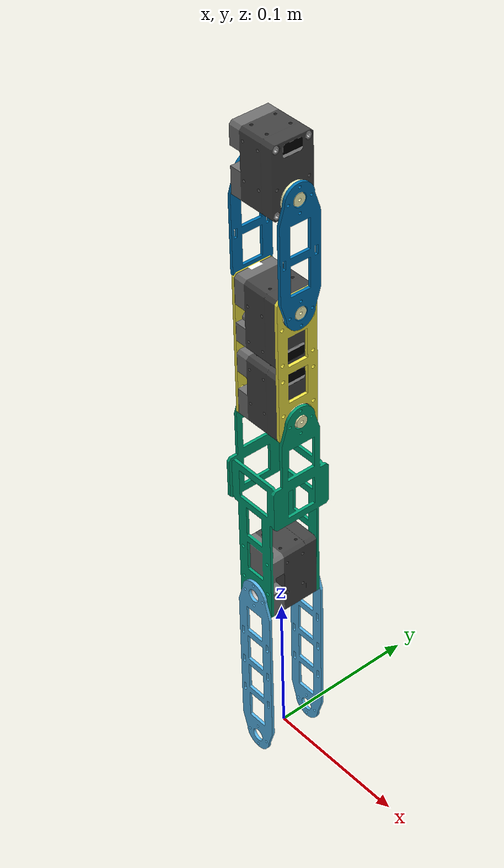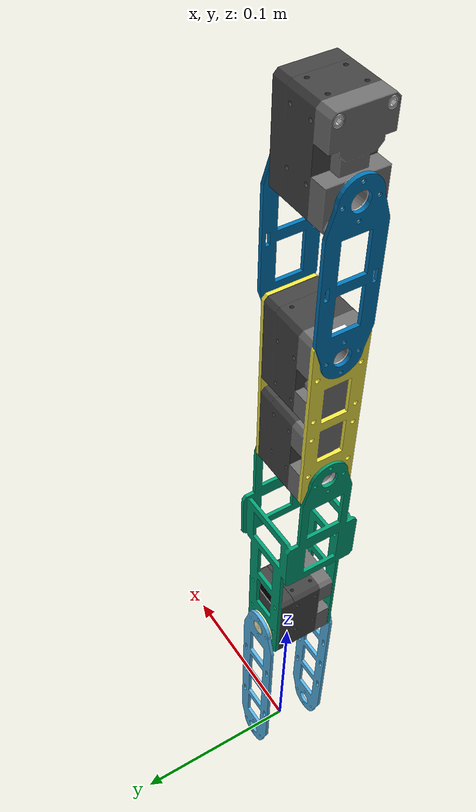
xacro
<?xml version="1.0"?>

<robot name="cmanip" xmlns:xacro="http://ros.org/wiki/xacro">

  <xacro:include filename="$(find aerial_manipulators)/urdf/manipulator_base.urdf.xacro" />
  <link name="world"></link>
  <xacro:cmanip
    parent="world">
    <origin xyz="0 0 0" rpy="${pi/2} 0 ${pi}"/>
  </xacro:cmanip>

  <xacro:transmisija
    trans_number="1"
    joint_name="link0_to_link1">
  </xacro:transmisija>

  <xacro:transmisija
    trans_number="2"
    joint_name="link1_to_link2">
  </xacro:transmisija>

  <xacro:transmisija
    trans_number="3"
    joint_name="link2_to_link3">
  </xacro:transmisija>

  <xacro:transmisija
    trans_number="4"
    joint_name="link3_to_link4">
  </xacro:transmisija>

  <xacro:transmisija
    trans_number="5"
    joint_name="link4_to_link5">
  </xacro:transmisija>
</robot>

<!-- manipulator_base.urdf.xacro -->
<robot xmlns:xacro="http://ros.org/wiki/xacro">

  <xacro:macro name="cmanip"
  params="parent *origin">

    <xacro:property name="a1" value="0.122490"/>
    <xacro:property name="a2" value="0.1365"/>
    <xacro:property name="a3" value="0.075511"/>
    <xacro:property name="a4" value="0.072489"/>
    <xacro:property name="d5" value="0.04526"/>
    <xacro:property name="theta1" value="${pi/2}"/>
    <xacro:property name="alpha2" value="${-pi/2}"/>

    <xacro:property name="mass1" value="0.01715"/>
    <xacro:property name="mass2" value="0.10663"/>
    <xacro:property name="mass3" value="0.17449"/>
    <xacro:property name="mass4" value="0.01133"/>
    <xacro:property name="mass5" value="0.08200"/>

    <xacro:property name="rad" value="0.03"/>

    <link name='link1'>
      <inertial>
        <mass value="${mass1}" />
        <origin xyz="0.00073 0.06124 -0.00009" rpy="0 0 0"/>
        <inertia ixx = "0.00003618101"	ixy = "-0.00000032742"	ixz = "0.00" iyy = "0.00000866025"	iyz = "0.00"	izz = "0.00003041429"/>
      </inertial>

      <visual>
        <origin xyz="0 0 0" rpy="0 0 0" />
        <geometry>
          <mesh filename="package://aerial_manipulators/meshes/wp_manipulator/link1.dae"
            scale="1 1 1" />
        </geometry>
      </visual>
    </link>

    <link name='link2'>
      <inertial>
        <mass value="${mass2}" />
        <origin xyz="0.0257 0.00004 0" rpy="0 0 0"/>
        <inertia ixx="0.000025414" ixy="0.00000000062" ixz="-0.00000114006" iyy="0.00013446945" iyz="0.00000000001" izz="0.00013233260"/>
      </inertial>

      <visual>
        <origin xyz="0 0 0" rpy="0 0 -${pi / 2}" />
        <geometry>
          <mesh filename="package://aerial_manipulators/meshes/wp_manipulator/link2.dae"
            scale="1 1 1" />
        </geometry>
      </visual>
    </link>

    <link name='link3'>
      <inertial>
        <mass value="${mass3}" />
        <origin xyz="0.03443 0 0.00018" rpy="0 0 0"/>
        <inertia ixx="0.00003095696" ixy="0.00000000169" ixz="0" iyy="0.00016728462" iyz="0" izz="0.00015971261"/>
      </inertial>

      <visual>
        <origin xyz="0 0 0" rpy="0 ${pi / 2} ${-pi / 2}" />
        <geometry>
          <mesh filename="package://aerial_manipulators/meshes/wp_manipulator/link3.dae"
            scale="1 1 1" />
        </geometry>
      </visual>
    </link>

    <link name='link4'>
      <inertial>
        <mass value="${mass4}" />
        <origin xyz="0.03624 0 -0.00059" rpy="0 0 0"/>
        <inertia ixx="0.00000540203" ixy="0" ixz="0" iyy="0.00001225566" iyz="0" izz="0.00000858285"/>
      </inertial>

      <visual>
        <origin xyz="0 0 0" rpy="0 ${pi / 2} -${pi / 2}" />
        <geometry>
          <mesh filename="package://aerial_manipulators/meshes/wp_manipulator/link4.dae"
            scale="1 1 1" />
        </geometry>
      </visual>
    </link>

    <link name='link5'>
      <inertial>
        <mass value="${mass5}" />
        <origin xyz="0.01179 0 0.00023" rpy="0 0 0"/>
        <inertia ixx="0.00001323215" ixy="0.00000000037" ixz="-0.0000019846" iyy="0.00002293047" iyz="0.0000000002" izz="0.00002030725"/>
      </inertial>

      <visual>
        <origin xyz="0 0 0" rpy="0 ${pi / 2} 0" />
        <geometry>
          <mesh filename="package://aerial_manipulators/meshes/wp_manipulator/link5.dae"
            scale="1 1 1" />
        </geometry>
      </visual>

      <collision>
        <origin xyz="0 0 0" rpy="0 ${pi / 2} 0" />
        <geometry>
          <mesh filename="package://aerial_manipulators/meshes/wp_manipulator/link5.dae"
            scale="1 1 1" />
        </geometry>
      </collision>
    </link>

    <joint name="link0_to_link1" type="revolute">
      <parent link="${parent}"/>
      <child link="link1"/>
      <!-- Adjust Gazebo coordinate system to link1 coordinate system -->
      <!--origin xyz="0 0 0.075" rpy="${pi/2} 0 ${pi}"/-->
      <xacro:insert_block name="origin"/>
      <limit upper="1.57" lower="-1.57" effort="10000000" velocity="20"/>
      <axis xyz="0 0 1" />
    </joint>

    <joint name="link1_to_link2" type="revolute">
      <parent link="link1"/>
      <child link="link2"/>
      <origin xyz="0 ${a1} 0" rpy="0 0 ${theta1}"/>
      <limit upper="2.2" lower="-2.2" effort="10000000" velocity="20"/>
      <axis xyz="0 0 1" />
    </joint>

    <joint name="link2_to_link3" type="revolute">
      <parent link="link2"/>
      <child link="link3"/>
      <origin xyz="${a2} 0 0" rpy="${alpha2} 0 0"/>
      <limit upper="1.57" lower="-1.57" effort="10000000" velocity="20"/>
      <axis xyz="0 0 1" />
    </joint>

    <joint name="link3_to_link4" type="revolute">
      <parent link="link3"/>
      <child link="link4"/>
      <origin xyz="${a3} 0 0" rpy="0 0 0"/>
      <limit upper="1.57" lower="-1.57" effort="10000000" velocity="20"/>
      <axis xyz="0 0 1" />
    </joint>

    <joint name="link4_to_link5" type="revolute">
      <parent link="link4"/>
      <child link="link5"/>
      <origin xyz="${a4} 0 0" rpy="0 0 0"/>
      <limit upper="2.3" lower="-2.3" effort="10000000" velocity="20"/>
      <axis xyz="0 0 1" />
    </joint>
  </xacro:macro>

  <xacro:macro name="transmisija" params="trans_number joint_name">
    <transmission name="transmission_${trans_number}">
      <type>transmission_interface/SimpleTransmission</type>
      <joint name="${joint_name}">
        <hardwareInterface>hardware_interface/EffortJointInterface</hardwareInterface>
      </joint>
      <actuator name="motor_${trans_number}">
        <hardwareInterface>hardware_interface/EffortActuatorInterface</hardwareInterface>
        <mechanicalReduction>1</mechanicalReduction>
      </actuator>
    </transmission>
  </xacro:macro>

  <xacro:macro name="force_sensor"
      params="*origin">
__________________________-->
      <!--LINK1 force sensor stand-->
      <link name='link_force_sensor_stand'>

        <inertial>
          <mass value="0.002" />
          <origin rpy="0 0 0" xyz="0 0.46818651 0"/>
          <inertia
            ixx="0.00023434322" ixy="0" ixz="0.0"
            iyx="0" iyy="0.00001547123" iyz="0"
            izx="0.0" izy="0" izz="0.00023434322"/>
        </inertial>

        <visual>
          <origin xyz="0 0 0" rpy="0 0 0" />
          <geometry>
            <mesh filename="package://aerial_manipulators/meshes/wp_manipulator/forcesensor_stand.dae"
              scale="0.1 0.1 0.1" />
          </geometry>
        </visual>

      </link>
      <!--LINK2 force sensor mount bottom-->
      <link name='link_force_sensor_bottom_mount'>

        <inertial>
          <mass value="0.0005" />
          <origin rpy="0 0 0" xyz="0.0 0.000206111 0.0"/>
          <inertia
            ixx="0.0000002139" ixy="0" ixz="0.0"
            iyx="0" iyy="0.0000004241" iyz="0"
            izx="0.0" izy="0" izz="0.0000002139"/>
        </inertial>

        <visual>
          <origin xyz="0 0 0" rpy="0 0 0" />
          <geometry>
            <mesh filename="package://aerial_manipulators/meshes/wp_manipulator/forcesensor_mount_bottom.dae"
              scale="0.1 0.1 0.1" />
          </geometry>
        </visual>

      </link>
      <!--LINK2 force sensor mount top-->
      <link name='link_force_sensor_top_mount'>

        <inertial>
          <mass value="0.00080" />
          <origin rpy="0 0 0" xyz="0 0 -0.02998408"/>
          <inertia
            ixx="0.0000059994" ixy="0" ixz="0.0"
            iyx="0" iyy="0.0000059994" iyz="0"
            izx="0.0" izy="0" izz="0.0000119615"/>
        </inertial>

        <visual>
          <origin xyz="-0.001903 -0.001661 -0.005153" rpy="0 0 0" />
          <geometry>
            <mesh filename="package://aerial_manipulators/meshes/wp_manipulator/forcesensor_mount_top.dae"
              scale="0.1 0.1 0.1" />
          </geometry>
        </visual>

        <collision name='collision'>
          <origin xyz="-0.001903 -0.001661 -0.005153" rpy="0 0 0"/>
          <geometry>
            <mesh filename="package://aerial_manipulators/meshes/wp_manipulator/forcesensor_mount_top.dae"
              scale="0.1 0.1 0.1" />
          </geometry>
        </collision>
      </link>

      <!--JOINT1 FIXED force_sensor_stand-->
      <joint name="joint_force_sensor_stand" type="fixed">
          <xacro:insert_block name="origin"/>
          <parent link="link5"/>
          <child link="link_force_sensor_stand"/>
      </joint>
      <!--JOINT2 FIXED joint_force_sensor_mount_bottom-->
      <joint name="joint_force_sensor_mount_bottom" type="fixed">
          <origin xyz="0 0.1003 0" rpy="${pi} 0 0" />
          <parent link="link_force_sensor_stand"/>
          <child link="link_force_sensor_bottom_mount"/>
      </joint>
      <!--JOINT2 FIXED force_sensor_mount_top-->
      <joint name="joint_force_sensor_mount_top" type="prismatic">
          <origin xyz="0 0 0" rpy="${-pi/2} 0 0" />
          <parent link="link_force_sensor_bottom_mount"/>
          <child link="link_force_sensor_top_mount"/>
          <axis xyz="0 0 1" />
          <limit effort="0" velocity="0" lower="0" upper="0" />
      </joint>
    </xacro:macro>

</robot>
